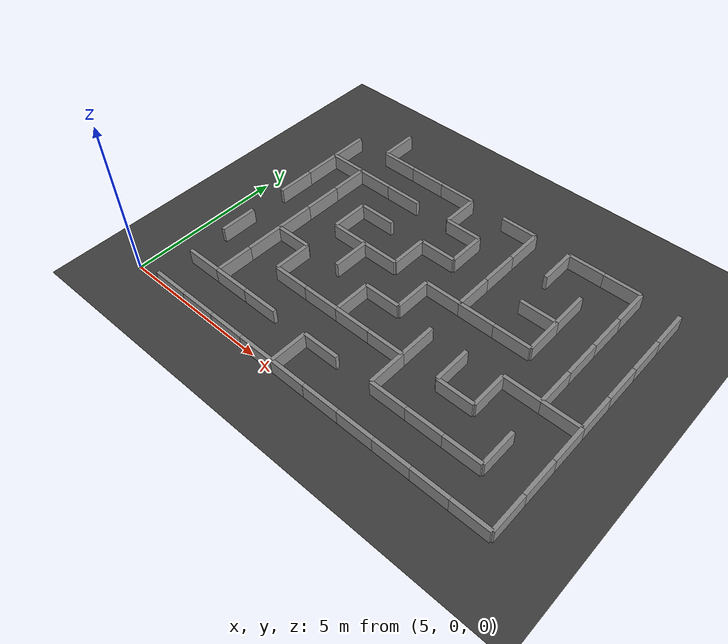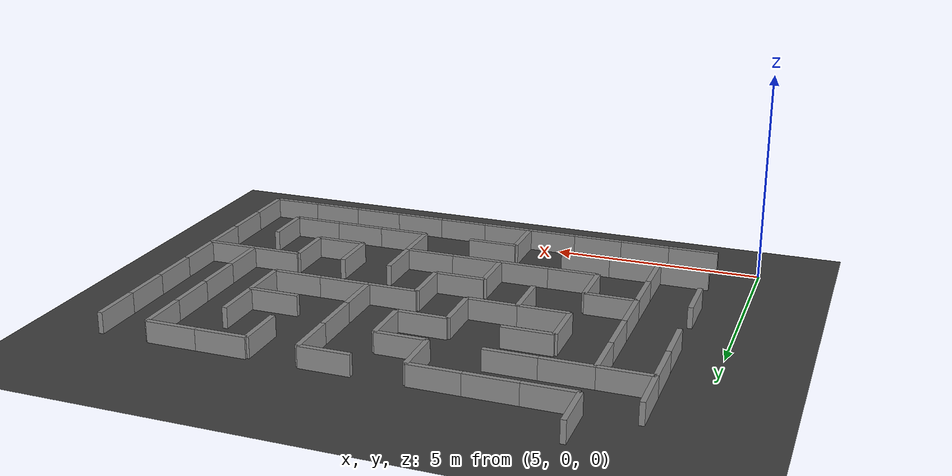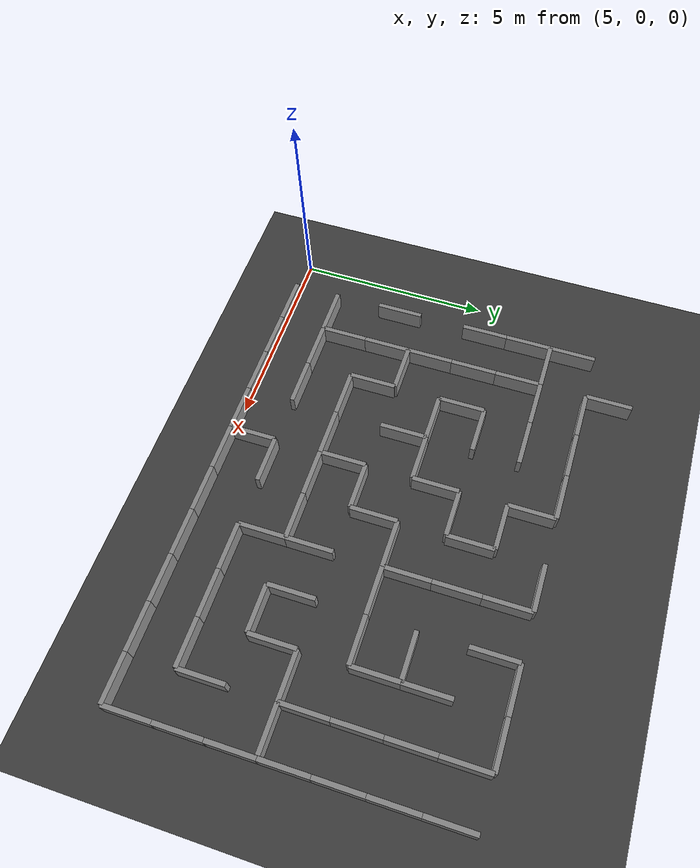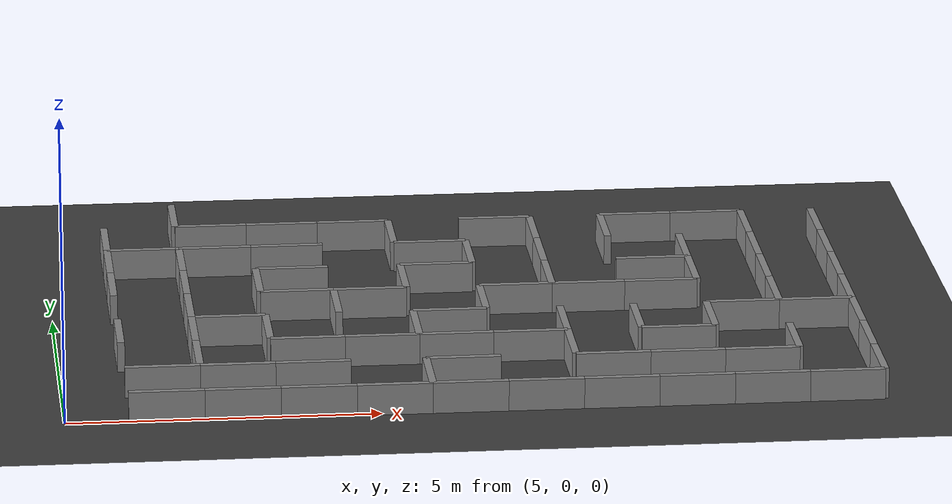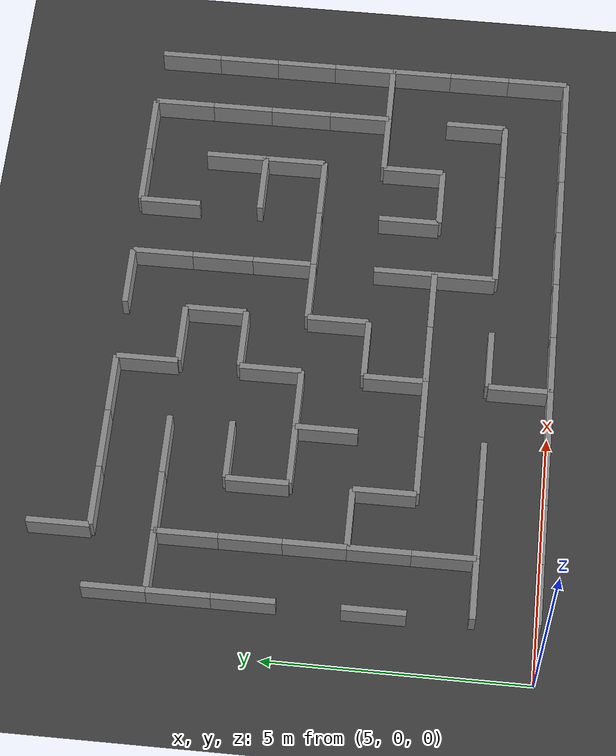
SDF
<sdf version="1.9">
 <world name="maze_world">
  <model name="ground_plane">
   <static>true</static>
   <link name="link">
    <collision name="col">
     <geometry><plane><normal>0 0 1</normal><size>500 500</size></plane></geometry>
     <surface><friction><ode><mu>1.0</mu><mu2>1.0</mu2></ode></friction></surface>
    </collision>
    <visual name="vis">
     <geometry><plane><normal>0 0 1</normal><size>500 500</size></plane></geometry>
     <material><ambient>0.25 0.25 0.25 1</ambient><diffuse>0.25 0.25 0.25 1</diffuse></material>
    </visual>
   </link>
  </model>
  <model name="maze_walls">
   <static>true</static>
   <link name="w0104">
    <pose>7.20000 9.00000 0.25000 0 0 0</pose>
    <collision name="col">
     <geometry><box><size>0.12000 1.20000 0.50000</size></box></geometry>
     <surface><friction><ode><mu>1.0</mu><mu2>1.0</mu2></ode></friction></surface>
    </collision>
    <visual name="vis">
     <geometry><box><size>0.12000 1.20000 0.50000</size></box></geometry>
     <material>
      <ambient>0.55 0.55 0.55 1</ambient>
      <diffuse>0.55 0.55 0.55 1</diffuse>
      <specular>0.1 0.1 0.1 1</specular>
     </material>
    </visual>
   </link>
   <link name="w0105">
    <pose>7.80000 8.40000 0.25000 0 0 0</pose>
    <collision name="col">
     <geometry><box><size>1.20000 0.12000 0.50000</size></box></geometry>
     <surface><friction><ode><mu>1.0</mu><mu2>1.0</mu2></ode></friction></surface>
    </collision>
    <visual name="vis">
     <geometry><box><size>1.20000 0.12000 0.50000</size></box></geometry>
     <material>
      <ambient>0.55 0.55 0.55 1</ambient>
      <diffuse>0.55 0.55 0.55 1</diffuse>
      <specular>0.1 0.1 0.1 1</specular>
     </material>
    </visual>
   </link>
   <link name="w0106">
    <pose>9.00000 8.40000 0.25000 0 0 0</pose>
    <collision name="col">
     <geometry><box><size>1.20000 0.12000 0.50000</size></box></geometry>
     <surface><friction><ode><mu>1.0</mu><mu2>1.0</mu2></ode></friction></surface>
    </collision>
    <visual name="vis">
     <geometry><box><size>1.20000 0.12000 0.50000</size></box></geometry>
     <material>
      <ambient>0.55 0.55 0.55 1</ambient>
      <diffuse>0.55 0.55 0.55 1</diffuse>
      <specular>0.1 0.1 0.1 1</specular>
     </material>
    </visual>
   </link>
   <link name="w0107">
    <pose>10.20000 8.40000 0.25000 0 0 0</pose>
    <collision name="col">
     <geometry><box><size>1.20000 0.12000 0.50000</size></box></geometry>
     <surface><friction><ode><mu>1.0</mu><mu2>1.0</mu2></ode></friction></surface>
    </collision>
    <visual name="vis">
     <geometry><box><size>1.20000 0.12000 0.50000</size></box></geometry>
     <material>
      <ambient>0.55 0.55 0.55 1</ambient>
      <diffuse>0.55 0.55 0.55 1</diffuse>
      <specular>0.1 0.1 0.1 1</specular>
     </material>
    </visual>
   </link>
   <link name="w0109">
    <pose>12.60000 8.40000 0.25000 0 0 0</pose>
    <collision name="col">
     <geometry><box><size>1.20000 0.12000 0.50000</size></box></geometry>
     <surface><friction><ode><mu>1.0</mu><mu2>1.0</mu2></ode></friction></surface>
    </collision>
    <visual name="vis">
     <geometry><box><size>1.20000 0.12000 0.50000</size></box></geometry>
     <material>
      <ambient>0.55 0.55 0.55 1</ambient>
      <diffuse>0.55 0.55 0.55 1</diffuse>
      <specular>0.1 0.1 0.1 1</specular>
     </material>
    </visual>
   </link>
   <link name="w0112">
    <pose>15.00000 8.40000 0.25000 0 0 0</pose>
    <collision name="col">
     <geometry><box><size>1.20000 0.12000 0.50000</size></box></geometry>
     <surface><friction><ode><mu>1.0</mu><mu2>1.0</mu2></ode></friction></surface>
    </collision>
    <visual name="vis">
     <geometry><box><size>1.20000 0.12000 0.50000</size></box></geometry>
     <material>
      <ambient>0.55 0.55 0.55 1</ambient>
      <diffuse>0.55 0.55 0.55 1</diffuse>
      <specular>0.1 0.1 0.1 1</specular>
     </material>
    </visual>
   </link>
   <link name="w0113">
    <pose>16.20000 8.40000 0.25000 0 0 0</pose>
    <collision name="col">
     <geometry><box><size>1.20000 0.12000 0.50000</size></box></geometry>
     <surface><friction><ode><mu>1.0</mu><mu2>1.0</mu2></ode></friction></surface>
    </collision>
    <visual name="vis">
     <geometry><box><size>1.20000 0.12000 0.50000</size></box></geometry>
     <material>
      <ambient>0.55 0.55 0.55 1</ambient>
      <diffuse>0.55 0.55 0.55 1</diffuse>
      <specular>0.1 0.1 0.1 1</specular>
     </material>
    </visual>
   </link>
   <link name="w0121">
    <pose>6.00000 7.80000 0.25000 0 0 0</pose>
    <collision name="col">
     <geometry><box><size>0.12000 1.20000 0.50000</size></box></geometry>
     <surface><friction><ode><mu>1.0</mu><mu2>1.0</mu2></ode></friction></surface>
    </collision>
    <visual name="vis">
     <geometry><box><size>0.12000 1.20000 0.50000</size></box></geometry>
     <material>
      <ambient>0.55 0.55 0.55 1</ambient>
      <diffuse>0.55 0.55 0.55 1</diffuse>
      <specular>0.1 0.1 0.1 1</specular>
     </material>
    </visual>
   </link>
   <link name="w0122">
    <pose>6.60000 7.20000 0.25000 0 0 0</pose>
    <collision name="col">
     <geometry><box><size>1.20000 0.12000 0.50000</size></box></geometry>
     <surface><friction><ode><mu>1.0</mu><mu2>1.0</mu2></ode></friction></surface>
    </collision>
    <visual name="vis">
     <geometry><box><size>1.20000 0.12000 0.50000</size></box></geometry>
     <material>
      <ambient>0.55 0.55 0.55 1</ambient>
      <diffuse>0.55 0.55 0.55 1</diffuse>
      <specular>0.1 0.1 0.1 1</specular>
     </material>
    </visual>
   </link>
   <link name="w0123">
    <pose>7.80000 7.20000 0.25000 0 0 0</pose>
    <collision name="col">
     <geometry><box><size>1.20000 0.12000 0.50000</size></box></geometry>
     <surface><friction><ode><mu>1.0</mu><mu2>1.0</mu2></ode></friction></surface>
    </collision>
    <visual name="vis">
     <geometry><box><size>1.20000 0.12000 0.50000</size></box></geometry>
     <material>
      <ambient>0.55 0.55 0.55 1</ambient>
      <diffuse>0.55 0.55 0.55 1</diffuse>
      <specular>0.1 0.1 0.1 1</specular>
     </material>
    </visual>
   </link>
   <link name="w0124">
    <pose>9.00000 7.20000 0.25000 0 0 0</pose>
    <collision name="col">
     <geometry><box><size>1.20000 0.12000 0.50000</size></box></geometry>
     <surface><friction><ode><mu>1.0</mu><mu2>1.0</mu2></ode></friction></surface>
    </collision>
    <visual name="vis">
     <geometry><box><size>1.20000 0.12000 0.50000</size></box></geometry>
     <material>
      <ambient>0.55 0.55 0.55 1</ambient>
      <diffuse>0.55 0.55 0.55 1</diffuse>
      <specular>0.1 0.1 0.1 1</specular>
     </material>
    </visual>
   </link>
   <link name="w0125">
    <pose>10.80000 7.80000 0.25000 0 0 0</pose>
    <collision name="col">
     <geometry><box><size>0.12000 1.20000 0.50000</size></box></geometry>
     <surface><friction><ode><mu>1.0</mu><mu2>1.0</mu2></ode></friction></surface>
    </collision>
    <visual name="vis">
     <geometry><box><size>0.12000 1.20000 0.50000</size></box></geometry>
     <material>
      <ambient>0.55 0.55 0.55 1</ambient>
      <diffuse>0.55 0.55 0.55 1</diffuse>
      <specular>0.1 0.1 0.1 1</specular>
     </material>
    </visual>
   </link>
   <link name="w0126">
    <pose>11.40000 7.20000 0.25000 0 0 0</pose>
    <collision name="col">
     <geometry><box><size>1.20000 0.12000 0.50000</size></box></geometry>
     <surface><friction><ode><mu>1.0</mu><mu2>1.0</mu2></ode></friction></surface>
    </collision>
    <visual name="vis">
     <geometry><box><size>1.20000 0.12000 0.50000</size></box></geometry>
     <material>
      <ambient>0.55 0.55 0.55 1</ambient>
      <diffuse>0.55 0.55 0.55 1</diffuse>
      <specular>0.1 0.1 0.1 1</specular>
     </material>
    </visual>
   </link>
   <link name="w0127">
    <pose>13.20000 7.80000 0.25000 0 0 0</pose>
    <collision name="col">
     <geometry><box><size>0.12000 1.20000 0.50000</size></box></geometry>
     <surface><friction><ode><mu>1.0</mu><mu2>1.0</mu2></ode></friction></surface>
    </collision>
    <visual name="vis">
     <geometry><box><size>0.12000 1.20000 0.50000</size></box></geometry>
     <material>
      <ambient>0.55 0.55 0.55 1</ambient>
      <diffuse>0.55 0.55 0.55 1</diffuse>
      <specular>0.1 0.1 0.1 1</specular>
     </material>
    </visual>
   </link>
   <link name="w0128">
    <pose>14.40000 7.80000 0.25000 0 0 0</pose>
    <collision name="col">
     <geometry><box><size>0.12000 1.20000 0.50000</size></box></geometry>
     <surface><friction><ode><mu>1.0</mu><mu2>1.0</mu2></ode></friction></surface>
    </collision>
    <visual name="vis">
     <geometry><box><size>0.12000 1.20000 0.50000</size></box></geometry>
     <material>
      <ambient>0.55 0.55 0.55 1</ambient>
      <diffuse>0.55 0.55 0.55 1</diffuse>
      <specular>0.1 0.1 0.1 1</specular>
     </material>
    </visual>
   </link>
   <link name="w0129">
    <pose>16.80000 7.80000 0.25000 0 0 0</pose>
    <collision name="col">
     <geometry><box><size>0.12000 1.20000 0.50000</size></box></geometry>
     <surface><friction><ode><mu>1.0</mu><mu2>1.0</mu2></ode></friction></surface>
    </collision>
    <visual name="vis">
     <geometry><box><size>0.12000 1.20000 0.50000</size></box></geometry>
     <material>
      <ambient>0.55 0.55 0.55 1</ambient>
      <diffuse>0.55 0.55 0.55 1</diffuse>
      <specular>0.1 0.1 0.1 1</specular>
     </material>
    </visual>
   </link>
   <link name="w0130">
    <pose>18.00000 7.80000 0.25000 0 0 0</pose>
    <collision name="col">
     <geometry><box><size>0.12000 1.20000 0.50000</size></box></geometry>
     <surface><friction><ode><mu>1.0</mu><mu2>1.0</mu2></ode></friction></surface>
    </collision>
    <visual name="vis">
     <geometry><box><size>0.12000 1.20000 0.50000</size></box></geometry>
     <material>
      <ambient>0.55 0.55 0.55 1</ambient>
      <diffuse>0.55 0.55 0.55 1</diffuse>
      <specular>0.1 0.1 0.1 1</specular>
     </material>
    </visual>
   </link>
   <link name="w0136">
    <pose>6.00000 6.60000 0.25000 0 0 0</pose>
    <collision name="col">
     <geometry><box><size>0.12000 1.20000 0.50000</size></box></geometry>
     <surface><friction><ode><mu>1.0</mu><mu2>1.0</mu2></ode></friction></surface>
    </collision>
    <visual name="vis">
     <geometry><box><size>0.12000 1.20000 0.50000</size></box></geometry>
     <material>
      <ambient>0.55 0.55 0.55 1</ambient>
      <diffuse>0.55 0.55 0.55 1</diffuse>
      <specular>0.1 0.1 0.1 1</specular>
     </material>
    </visual>
   </link>
   <link name="w0137">
    <pose>7.20000 6.60000 0.25000 0 0 0</pose>
    <collision name="col">
     <geometry><box><size>0.12000 1.20000 0.50000</size></box></geometry>
     <surface><friction><ode><mu>1.0</mu><mu2>1.0</mu2></ode></friction></surface>
    </collision>
    <visual name="vis">
     <geometry><box><size>0.12000 1.20000 0.50000</size></box></geometry>
     <material>
      <ambient>0.55 0.55 0.55 1</ambient>
      <diffuse>0.55 0.55 0.55 1</diffuse>
      <specular>0.1 0.1 0.1 1</specular>
     </material>
    </visual>
   </link>
   <link name="w0138">
    <pose>9.00000 6.00000 0.25000 0 0 0</pose>
    <collision name="col">
     <geometry><box><size>1.20000 0.12000 0.50000</size></box></geometry>
     <surface><friction><ode><mu>1.0</mu><mu2>1.0</mu2></ode></friction></surface>
    </collision>
    <visual name="vis">
     <geometry><box><size>1.20000 0.12000 0.50000</size></box></geometry>
     <material>
      <ambient>0.55 0.55 0.55 1</ambient>
      <diffuse>0.55 0.55 0.55 1</diffuse>
      <specular>0.1 0.1 0.1 1</specular>
     </material>
    </visual>
   </link>
   <link name="w0139">
    <pose>11.40000 6.00000 0.25000 0 0 0</pose>
    <collision name="col">
     <geometry><box><size>1.20000 0.12000 0.50000</size></box></geometry>
     <surface><friction><ode><mu>1.0</mu><mu2>1.0</mu2></ode></friction></surface>
    </collision>
    <visual name="vis">
     <geometry><box><size>1.20000 0.12000 0.50000</size></box></geometry>
     <material>
      <ambient>0.55 0.55 0.55 1</ambient>
      <diffuse>0.55 0.55 0.55 1</diffuse>
      <specular>0.1 0.1 0.1 1</specular>
     </material>
    </visual>
   </link>
   <link name="w0140">
    <pose>12.00000 6.60000 0.25000 0 0 0</pose>
    <collision name="col">
     <geometry><box><size>0.12000 1.20000 0.50000</size></box></geometry>
     <surface><friction><ode><mu>1.0</mu><mu2>1.0</mu2></ode></friction></surface>
    </collision>
    <visual name="vis">
     <geometry><box><size>0.12000 1.20000 0.50000</size></box></geometry>
     <material>
      <ambient>0.55 0.55 0.55 1</ambient>
      <diffuse>0.55 0.55 0.55 1</diffuse>
      <specular>0.1 0.1 0.1 1</specular>
     </material>
    </visual>
   </link>
   <link name="w0141">
    <pose>13.20000 6.60000 0.25000 0 0 0</pose>
    <collision name="col">
     <geometry><box><size>0.12000 1.20000 0.50000</size></box></geometry>
     <surface><friction><ode><mu>1.0</mu><mu2>1.0</mu2></ode></friction></surface>
    </collision>
    <visual name="vis">
     <geometry><box><size>0.12000 1.20000 0.50000</size></box></geometry>
     <material>
      <ambient>0.55 0.55 0.55 1</ambient>
      <diffuse>0.55 0.55 0.55 1</diffuse>
      <specular>0.1 0.1 0.1 1</specular>
     </material>
    </visual>
   </link>
   <link name="w0142">
    <pose>15.00000 6.00000 0.25000 0 0 0</pose>
    <collision name="col">
     <geometry><box><size>1.20000 0.12000 0.50000</size></box></geometry>
     <surface><friction><ode><mu>1.0</mu><mu2>1.0</mu2></ode></friction></surface>
    </collision>
    <visual name="vis">
     <geometry><box><size>1.20000 0.12000 0.50000</size></box></geometry>
     <material>
      <ambient>0.55 0.55 0.55 1</ambient>
      <diffuse>0.55 0.55 0.55 1</diffuse>
      <specular>0.1 0.1 0.1 1</specular>
     </material>
    </visual>
   </link>
   <link name="w0143">
    <pose>15.60000 6.60000 0.25000 0 0 0</pose>
    <collision name="col">
     <geometry><box><size>0.12000 1.20000 0.50000</size></box></geometry>
     <surface><friction><ode><mu>1.0</mu><mu2>1.0</mu2></ode></friction></surface>
    </collision>
    <visual name="vis">
     <geometry><box><size>0.12000 1.20000 0.50000</size></box></geometry>
     <material>
      <ambient>0.55 0.55 0.55 1</ambient>
      <diffuse>0.55 0.55 0.55 1</diffuse>
      <specular>0.1 0.1 0.1 1</specular>
     </material>
    </visual>
   </link>
   <link name="w0144">
    <pose>16.80000 6.60000 0.25000 0 0 0</pose>
    <collision name="col">
     <geometry><box><size>0.12000 1.20000 0.50000</size></box></geometry>
     <surface><friction><ode><mu>1.0</mu><mu2>1.0</mu2></ode></friction></surface>
    </collision>
    <visual name="vis">
     <geometry><box><size>0.12000 1.20000 0.50000</size></box></geometry>
     <material>
      <ambient>0.55 0.55 0.55 1</ambient>
      <diffuse>0.55 0.55 0.55 1</diffuse>
      <specular>0.1 0.1 0.1 1</specular>
     </material>
    </visual>
   </link>
   <link name="w0145">
    <pose>18.00000 6.60000 0.25000 0 0 0</pose>
    <collision name="col">
     <geometry><box><size>0.12000 1.20000 0.50000</size></box></geometry>
     <surface><friction><ode><mu>1.0</mu><mu2>1.0</mu2></ode></friction></surface>
    </collision>
    <visual name="vis">
     <geometry><box><size>0.12000 1.20000 0.50000</size></box></geometry>
     <material>
      <ambient>0.55 0.55 0.55 1</ambient>
      <diffuse>0.55 0.55 0.55 1</diffuse>
      <specular>0.1 0.1 0.1 1</specular>
     </material>
    </visual>
   </link>
   <link name="w0150">
    <pose>6.00000 5.40000 0.25000 0 0 0</pose>
    <collision name="col">
     <geometry><box><size>0.12000 1.20000 0.50000</size></box></geometry>
     <surface><friction><ode><mu>1.0</mu><mu2>1.0</mu2></ode></friction></surface>
    </collision>
    <visual name="vis">
     <geometry><box><size>0.12000 1.20000 0.50000</size></box></geometry>
     <material>
      <ambient>0.55 0.55 0.55 1</ambient>
      <diffuse>0.55 0.55 0.55 1</diffuse>
      <specular>0.1 0.1 0.1 1</specular>
     </material>
    </visual>
   </link>
   <link name="w0151">
    <pose>7.20000 5.40000 0.25000 0 0 0</pose>
    <collision name="col">
     <geometry><box><size>0.12000 1.20000 0.50000</size></box></geometry>
     <surface><friction><ode><mu>1.0</mu><mu2>1.0</mu2></ode></friction></surface>
    </collision>
    <visual name="vis">
     <geometry><box><size>0.12000 1.20000 0.50000</size></box></geometry>
     <material>
      <ambient>0.55 0.55 0.55 1</ambient>
      <diffuse>0.55 0.55 0.55 1</diffuse>
      <specular>0.1 0.1 0.1 1</specular>
     </material>
    </visual>
   </link>
   <link name="w0152">
    <pose>8.40000 5.40000 0.25000 0 0 0</pose>
    <collision name="col">
     <geometry><box><size>0.12000 1.20000 0.50000</size></box></geometry>
     <surface><friction><ode><mu>1.0</mu><mu2>1.0</mu2></ode></friction></surface>
    </collision>
    <visual name="vis">
     <geometry><box><size>0.12000 1.20000 0.50000</size></box></geometry>
     <material>
      <ambient>0.55 0.55 0.55 1</ambient>
      <diffuse>0.55 0.55 0.55 1</diffuse>
      <specular>0.1 0.1 0.1 1</specular>
     </material>
    </visual>
   </link>
   <link name="w0153">
    <pose>9.00000 4.80000 0.25000 0 0 0</pose>
    <collision name="col">
     <geometry><box><size>1.20000 0.12000 0.50000</size></box></geometry>
     <surface><friction><ode><mu>1.0</mu><mu2>1.0</mu2></ode></friction></surface>
    </collision>
    <visual name="vis">
     <geometry><box><size>1.20000 0.12000 0.50000</size></box></geometry>
     <material>
      <ambient>0.55 0.55 0.55 1</ambient>
      <diffuse>0.55 0.55 0.55 1</diffuse>
      <specular>0.1 0.1 0.1 1</specular>
     </material>
    </visual>
   </link>
   <link name="w0154">
    <pose>10.20000 4.80000 0.25000 0 0 0</pose>
    <collision name="col">
     <geometry><box><size>1.20000 0.12000 0.50000</size></box></geometry>
     <surface><friction><ode><mu>1.0</mu><mu2>1.0</mu2></ode></friction></surface>
    </collision>
    <visual name="vis">
     <geometry><box><size>1.20000 0.12000 0.50000</size></box></geometry>
     <material>
      <ambient>0.55 0.55 0.55 1</ambient>
      <diffuse>0.55 0.55 0.55 1</diffuse>
      <specular>0.1 0.1 0.1 1</specular>
     </material>
    </visual>
   </link>
   <link name="w0155">
    <pose>10.80000 5.40000 0.25000 0 0 0</pose>
    <collision name="col">
     <geometry><box><size>0.12000 1.20000 0.50000</size></box></geometry>
     <surface><friction><ode><mu>1.0</mu><mu2>1.0</mu2></ode></friction></surface>
    </collision>
    <visual name="vis">
     <geometry><box><size>0.12000 1.20000 0.50000</size></box></geometry>
     <material>
      <ambient>0.55 0.55 0.55 1</ambient>
      <diffuse>0.55 0.55 0.55 1</diffuse>
      <specular>0.1 0.1 0.1 1</specular>
     </material>
    </visual>
   </link>
   <link name="w0156">
    <pose>12.60000 4.80000 0.25000 0 0 0</pose>
    <collision name="col">
     <geometry><box><size>1.20000 0.12000 0.50000</size></box></geometry>
     <surface><friction><ode><mu>1.0</mu><mu2>1.0</mu2></ode></friction></surface>
    </collision>
    <visual name="vis">
     <geometry><box><size>1.20000 0.12000 0.50000</size></box></geometry>
     <material>
      <ambient>0.55 0.55 0.55 1</ambient>
      <diffuse>0.55 0.55 0.55 1</diffuse>
      <specular>0.1 0.1 0.1 1</specular>
     </material>
    </visual>
   </link>
   <link name="w0157">
    <pose>13.20000 5.40000 0.25000 0 0 0</pose>
    <collision name="col">
     <geometry><box><size>0.12000 1.20000 0.50000</size></box></geometry>
     <surface><friction><ode><mu>1.0</mu><mu2>1.0</mu2></ode></friction></surface>
    </collision>
    <visual name="vis">
     <geometry><box><size>0.12000 1.20000 0.50000</size></box></geometry>
     <material>
      <ambient>0.55 0.55 0.55 1</ambient>
      <diffuse>0.55 0.55 0.55 1</diffuse>
      <specular>0.1 0.1 0.1 1</specular>
     </material>
    </visual>
   </link>
   <link name="w0158">
    <pose>13.80000 4.80000 0.25000 0 0 0</pose>
    <collision name="col">
     <geometry><box><size>1.20000 0.12000 0.50000</size></box></geometry>
     <surface><friction><ode><mu>1.0</mu><mu2>1.0</mu2></ode></friction></surface>
    </collision>
    <visual name="vis">
     <geometry><box><size>1.20000 0.12000 0.50000</size></box></geometry>
     <material>
      <ambient>0.55 0.55 0.55 1</ambient>
      <diffuse>0.55 0.55 0.55 1</diffuse>
      <specular>0.1 0.1 0.1 1</specular>
     </material>
    </visual>
   </link>
   <link name="w0159">
    <pose>15.00000 4.80000 0.25000 0 0 0</pose>
    <collision name="col">
     <geometry><box><size>1.20000 0.12000 0.50000</size></box></geometry>
     <surface><friction><ode><mu>1.0</mu><mu2>1.0</mu2></ode></friction></surface>
    </collision>
    <visual name="vis">
     <geometry><box><size>1.20000 0.12000 0.50000</size></box></geometry>
     <material>
      <ambient>0.55 0.55 0.55 1</ambient>
      <diffuse>0.55 0.55 0.55 1</diffuse>
      <specular>0.1 0.1 0.1 1</specular>
     </material>
    </visual>
   </link>
   <link name="w0160">
    <pose>15.60000 5.40000 0.25000 0 0 0</pose>
    <collision name="col">
     <geometry><box><size>0.12000 1.20000 0.50000</size></box></geometry>
     <surface><friction><ode><mu>1.0</mu><mu2>1.0</mu2></ode></friction></surface>
    </collision>
    <visual name="vis">
     <geometry><box><size>0.12000 1.20000 0.50000</size></box></geometry>
     <material>
      <ambient>0.55 0.55 0.55 1</ambient>
      <diffuse>0.55 0.55 0.55 1</diffuse>
      <specular>0.1 0.1 0.1 1</specular>
     </material>
    </visual>
   </link>
   <link name="w0161">
    <pose>16.80000 5.40000 0.25000 0 0 0</pose>
    <collision name="col">
     <geometry><box><size>0.12000 1.20000 0.50000</size></box></geometry>
     <surface><friction><ode><mu>1.0</mu><mu2>1.0</mu2></ode></friction></surface>
    </collision>
    <visual name="vis">
     <geometry><box><size>0.12000 1.20000 0.50000</size></box></geometry>
     <material>
      <ambient>0.55 0.55 0.55 1</ambient>
      <diffuse>0.55 0.55 0.55 1</diffuse>
      <specular>0.1 0.1 0.1 1</specular>
     </material>
    </visual>
   </link>
   <link name="w0162">
    <pose>18.00000 5.40000 0.25000 0 0 0</pose>
    <collision name="col">
     <geometry><box><size>0.12000 1.20000 0.50000</size></box></geometry>
     <surface><friction><ode><mu>1.0</mu><mu2>1.0</mu2></ode></friction></surface>
    </collision>
    <visual name="vis">
     <geometry><box><size>0.12000 1.20000 0.50000</size></box></geometry>
     <material>
      <ambient>0.55 0.55 0.55 1</ambient>
      <diffuse>0.55 0.55 0.55 1</diffuse>
      <specular>0.1 0.1 0.1 1</specular>
     </material>
    </visual>
   </link>
   <link name="w0167">
    <pose>7.20000 4.20000 0.25000 0 0 0</pose>
    <collision name="col">
     <geometry><box><size>0.12000 1.20000 0.50000</size></box></geometry>
     <surface><friction><ode><mu>1.0</mu><mu2>1.0</mu2></ode></friction></surface>
    </collision>
    <visual name="vis">
     <geometry><box><size>0.12000 1.20000 0.50000</size></box></geometry>
     <material>
      <ambient>0.55 0.55 0.55 1</ambient>
      <diffuse>0.55 0.55 0.55 1</diffuse>
      <specular>0.1 0.1 0.1 1</specular>
     </material>
    </visual>
   </link>
   <link name="w0168">
    <pose>7.80000 3.60000 0.25000 0 0 0</pose>
    <collision name="col">
     <geometry><box><size>1.20000 0.12000 0.50000</size></box></geometry>
     <surface><friction><ode><mu>1.0</mu><mu2>1.0</mu2></ode></friction></surface>
    </collision>
    <visual name="vis">
     <geometry><box><size>1.20000 0.12000 0.50000</size></box></geometry>
     <material>
      <ambient>0.55 0.55 0.55 1</ambient>
      <diffuse>0.55 0.55 0.55 1</diffuse>
      <specular>0.1 0.1 0.1 1</specular>
     </material>
    </visual>
   </link>
   <link name="w0169">
    <pose>9.60000 4.20000 0.25000 0 0 0</pose>
    <collision name="col">
     <geometry><box><size>0.12000 1.20000 0.50000</size></box></geometry>
     <surface><friction><ode><mu>1.0</mu><mu2>1.0</mu2></ode></friction></surface>
    </collision>
    <visual name="vis">
     <geometry><box><size>0.12000 1.20000 0.50000</size></box></geometry>
     <material>
      <ambient>0.55 0.55 0.55 1</ambient>
      <diffuse>0.55 0.55 0.55 1</diffuse>
      <specular>0.1 0.1 0.1 1</specular>
     </material>
    </visual>
   </link>
   <link name="w0170">
    <pose>11.40000 3.60000 0.25000 0 0 0</pose>
    <collision name="col">
     <geometry><box><size>1.20000 0.12000 0.50000</size></box></geometry>
     <surface><friction><ode><mu>1.0</mu><mu2>1.0</mu2></ode></friction></surface>
    </collision>
    <visual name="vis">
     <geometry><box><size>1.20000 0.12000 0.50000</size></box></geometry>
     <material>
      <ambient>0.55 0.55 0.55 1</ambient>
      <diffuse>0.55 0.55 0.55 1</diffuse>
      <specular>0.1 0.1 0.1 1</specular>
     </material>
    </visual>
   </link>
   <link name="w0171">
    <pose>12.00000 4.20000 0.25000 0 0 0</pose>
    <collision name="col">
     <geometry><box><size>0.12000 1.20000 0.50000</size></box></geometry>
     <surface><friction><ode><mu>1.0</mu><mu2>1.0</mu2></ode></friction></surface>
    </collision>
    <visual name="vis">
     <geometry><box><size>0.12000 1.20000 0.50000</size></box></geometry>
     <material>
      <ambient>0.55 0.55 0.55 1</ambient>
      <diffuse>0.55 0.55 0.55 1</diffuse>
      <specular>0.1 0.1 0.1 1</specular>
     </material>
    </visual>
   </link>
   <link name="w0172">
    <pose>16.20000 3.60000 0.25000 0 0 0</pose>
    <collision name="col">
     <geometry><box><size>1.20000 0.12000 0.50000</size></box></geometry>
     <surface><friction><ode><mu>1.0</mu><mu2>1.0</mu2></ode></friction></surface>
    </collision>
    <visual name="vis">
     <geometry><box><size>1.20000 0.12000 0.50000</size></box></geometry>
     <material>
      <ambient>0.55 0.55 0.55 1</ambient>
      <diffuse>0.55 0.55 0.55 1</diffuse>
      <specular>0.1 0.1 0.1 1</specular>
     </material>
    </visual>
   </link>
   <link name="w0173">
    <pose>16.80000 4.20000 0.25000 0 0 0</pose>
    <collision name="col">
     <geometry><box><size>0.12000 1.20000 0.50000</size></box></geometry>
     <surface><friction><ode><mu>1.0</mu><mu2>1.0</mu2></ode></friction></surface>
    </collision>
    <visual name="vis">
     <geometry><box><size>0.12000 1.20000 0.50000</size></box></geometry>
     <material>
      <ambient>0.55 0.55 0.55 1</ambient>
      <diffuse>0.55 0.55 0.55 1</diffuse>
      <specular>0.1 0.1 0.1 1</specular>
     </material>
    </visual>
   </link>
   <link name="w0174">
    <pose>17.40000 3.60000 0.25000 0 0 0</pose>
    <collision name="col">
     <geometry><box><size>1.20000 0.12000 0.50000</size></box></geometry>
     <surface><friction><ode><mu>1.0</mu><mu2>1.0</mu2></ode></friction></surface>
    </collision>
    <visual name="vis">
     <geometry><box><size>1.20000 0.12000 0.50000</size></box></geometry>
     <material>
      <ambient>0.55 0.55 0.55 1</ambient>
      <diffuse>0.55 0.55 0.55 1</diffuse>
      <specular>0.1 0.1 0.1 1</specular>
     </material>
    </visual>
   </link>
   <link name="w0175">
    <pose>18.00000 4.20000 0.25000 0 0 0</pose>
    <collision name="col">
     <geometry><box><size>0.12000 1.20000 0.50000</size></box></geometry>
     <surface><friction><ode><mu>1.0</mu><mu2>1.0</mu2></ode></friction></surface>
    </collision>
    <visual name="vis">
     <geometry><box><size>0.12000 1.20000 0.50000</size></box></geometry>
     <material>
      <ambient>0.55 0.55 0.55 1</ambient>
      <diffuse>0.55 0.55 0.55 1</diffuse>
      <specular>0.1 0.1 0.1 1</specular>
     </material>
    </visual>
   </link>
   <link name="w0180">
    <pose>6.00000 3.00000 0.25000 0 0 0</pose>
    <collision name="col">
     <geometry><box><size>0.12000 1.20000 0.50000</size></box></geometry>
     <surface><friction><ode><mu>1.0</mu><mu2>1.0</mu2></ode></friction></surface>
    </collision>
    <visual name="vis">
     <geometry><box><size>0.12000 1.20000 0.50000</size></box></geometry>
     <material>
      <ambient>0.55 0.55 0.55 1</ambient>
      <diffuse>0.55 0.55 0.55 1</diffuse>
      <specular>0.1 0.1 0.1 1</specular>
     </material>
    </visual>
   </link>
   <link name="w0181">
    <pose>7.20000 3.00000 0.25000 0 0 0</pose>
    <collision name="col">
     <geometry><box><size>0.12000 1.20000 0.50000</size></box></geometry>
     <surface><friction><ode><mu>1.0</mu><mu2>1.0</mu2></ode></friction></surface>
    </collision>
    <visual name="vis">
     <geometry><box><size>0.12000 1.20000 0.50000</size></box></geometry>
     <material>
      <ambient>0.55 0.55 0.55 1</ambient>
      <diffuse>0.55 0.55 0.55 1</diffuse>
      <specular>0.1 0.1 0.1 1</specular>
     </material>
    </visual>
   </link>
   <link name="w0182">
    <pose>8.40000 3.00000 0.25000 0 0 0</pose>
    <collision name="col">
     <geometry><box><size>0.12000 1.20000 0.50000</size></box></geometry>
     <surface><friction><ode><mu>1.0</mu><mu2>1.0</mu2></ode></friction></surface>
    </collision>
    <visual name="vis">
     <geometry><box><size>0.12000 1.20000 0.50000</size></box></geometry>
     <material>
      <ambient>0.55 0.55 0.55 1</ambient>
      <diffuse>0.55 0.55 0.55 1</diffuse>
      <specular>0.1 0.1 0.1 1</specular>
     </material>
    </visual>
   </link>
   <link name="w0183">
    <pose>9.00000 2.40000 0.25000 0 0 0</pose>
    <collision name="col">
     <geometry><box><size>1.20000 0.12000 0.50000</size></box></geometry>
     <surface><friction><ode><mu>1.0</mu><mu2>1.0</mu2></ode></friction></surface>
    </collision>
    <visual name="vis">
     <geometry><box><size>1.20000 0.12000 0.50000</size></box></geometry>
     <material>
      <ambient>0.55 0.55 0.55 1</ambient>
      <diffuse>0.55 0.55 0.55 1</diffuse>
      <specular>0.1 0.1 0.1 1</specular>
     </material>
    </visual>
   </link>
   <link name="w0184">
    <pose>10.20000 2.40000 0.25000 0 0 0</pose>
    <collision name="col">
     <geometry><box><size>1.20000 0.12000 0.50000</size></box></geometry>
     <surface><friction><ode><mu>1.0</mu><mu2>1.0</mu2></ode></friction></surface>
    </collision>
    <visual name="vis">
     <geometry><box><size>1.20000 0.12000 0.50000</size></box></geometry>
     <material>
      <ambient>0.55 0.55 0.55 1</ambient>
      <diffuse>0.55 0.55 0.55 1</diffuse>
      <specular>0.1 0.1 0.1 1</specular>
     </material>
    </visual>
   </link>
   <link name="w0185">
    <pose>10.80000 3.00000 0.25000 0 0 0</pose>
    <collision name="col">
     <geometry><box><size>0.12000 1.20000 0.50000</size></box></geometry>
     <surface><friction><ode><mu>1.0</mu><mu2>1.0</mu2></ode></friction></surface>
    </collision>
    <visual name="vis">
     <geometry><box><size>0.12000 1.20000 0.50000</size></box></geometry>
     <material>
      <ambient>0.55 0.55 0.55 1</ambient>
      <diffuse>0.55 0.55 0.55 1</diffuse>
      <specular>0.1 0.1 0.1 1</specular>
     </material>
    </visual>
   </link>
   <link name="w0186">
    <pose>11.40000 2.40000 0.25000 0 0 0</pose>
    <collision name="col">
     <geometry><box><size>1.20000 0.12000 0.50000</size></box></geometry>
     <surface><friction><ode><mu>1.0</mu><mu2>1.0</mu2></ode></friction></surface>
    </collision>
    <visual name="vis">
     <geometry><box><size>1.20000 0.12000 0.50000</size></box></geometry>
     <material>
      <ambient>0.55 0.55 0.55 1</ambient>
      <diffuse>0.55 0.55 0.55 1</diffuse>
      <specular>0.1 0.1 0.1 1</specular>
     </material>
    </visual>
   </link>
   <link name="w0187">
    <pose>12.60000 2.40000 0.25000 0 0 0</pose>
    <collision name="col">
     <geometry><box><size>1.20000 0.12000 0.50000</size></box></geometry>
     <surface><friction><ode><mu>1.0</mu><mu2>1.0</mu2></ode></friction></surface>
    </collision>
    <visual name="vis">
     <geometry><box><size>1.20000 0.12000 0.50000</size></box></geometry>
     <material>
      <ambient>0.55 0.55 0.55 1</ambient>
      <diffuse>0.55 0.55 0.55 1</diffuse>
      <specular>0.1 0.1 0.1 1</specular>
     </material>
    </visual>
   </link>
   <link name="w0188">
    <pose>13.20000 3.00000 0.25000 0 0 0</pose>
    <collision name="col">
     <geometry><box><size>0.12000 1.20000 0.50000</size></box></geometry>
     <surface><friction><ode><mu>1.0</mu><mu2>1.0</mu2></ode></friction></surface>
    </collision>
    <visual name="vis">
     <geometry><box><size>0.12000 1.20000 0.50000</size></box></geometry>
     <material>
      <ambient>0.55 0.55 0.55 1</ambient>
      <diffuse>0.55 0.55 0.55 1</diffuse>
      <specular>0.1 0.1 0.1 1</specular>
     </material>
    </visual>
   </link>
   <link name="w0189">
    <pose>14.40000 3.00000 0.25000 0 0 0</pose>
    <collision name="col">
     <geometry><box><size>0.12000 1.20000 0.50000</size></box></geometry>
     <surface><friction><ode><mu>1.0</mu><mu2>1.0</mu2></ode></friction></surface>
    </collision>
    <visual name="vis">
     <geometry><box><size>0.12000 1.20000 0.50000</size></box></geometry>
     <material>
      <ambient>0.55 0.55 0.55 1</ambient>
      <diffuse>0.55 0.55 0.55 1</diffuse>
      <specular>0.1 0.1 0.1 1</specular>
     </material>
    </visual>
   </link>
   <link name="w0190">
    <pose>15.00000 2.40000 0.25000 0 0 0</pose>
    <collision name="col">
     <geometry><box><size>1.20000 0.12000 0.50000</size></box></geometry>
     <surface><friction><ode><mu>1.0</mu><mu2>1.0</mu2></ode></friction></surface>
    </collision>
    <visual name="vis">
     <geometry><box><size>1.20000 0.12000 0.50000</size></box></geometry>
     <material>
      <ambient>0.55 0.55 0.55 1</ambient>
      <diffuse>0.55 0.55 0.55 1</diffuse>
      <specular>0.1 0.1 0.1 1</specular>
     </material>
    </visual>
   </link>
   <link name="w0191">
    <pose>15.60000 3.00000 0.25000 0 0 0</pose>
    <collision name="col">
     <geometry><box><size>0.12000 1.20000 0.50000</size></box></geometry>
     <surface><friction><ode><mu>1.0</mu><mu2>1.0</mu2></ode></friction></surface>
    </collision>
    <visual name="vis">
     <geometry><box><size>0.12000 1.20000 0.50000</size></box></geometry>
     <material>
      <ambient>0.55 0.55 0.55 1</ambient>
      <diffuse>0.55 0.55 0.55 1</diffuse>
      <specular>0.1 0.1 0.1 1</specular>
     </material>
    </visual>
   </link>
   <link name="w0192">
    <pose>18.00000 3.00000 0.25000 0 0 0</pose>
    <collision name="col">
     <geometry><box><size>0.12000 1.20000 0.50000</size></box></geometry>
     <surface><friction><ode><mu>1.0</mu><mu2>1.0</mu2></ode></friction></surface>
    </collision>
    <visual name="vis">
     <geometry><box><size>0.12000 1.20000 0.50000</size></box></geometry>
     <material>
      <ambient>0.55 0.55 0.55 1</ambient>
      <diffuse>0.55 0.55 0.55 1</diffuse>
      <specular>0.1 0.1 0.1 1</specular>
     </material>
    </visual>
   </link>
   <link name="w0197">
    <pose>6.60000 1.20000 0.25000 0 0 0</pose>
    <collision name="col">
     <geometry><box><size>1.20000 0.12000 0.50000</size></box></geometry>
     <surface><friction><ode><mu>1.0</mu><mu2>1.0</mu2></ode></friction></surface>
    </collision>
    <visual name="vis">
     <geometry><box><size>1.20000 0.12000 0.50000</size></box></geometry>
     <material>
      <ambient>0.55 0.55 0.55 1</ambient>
      <diffuse>0.55 0.55 0.55 1</diffuse>
      <specular>0.1 0.1 0.1 1</specular>
     </material>
    </visual>
   </link>
   <link name="w0198">
    <pose>7.20000 1.80000 0.25000 0 0 0</pose>
    <collision name="col">
     <geometry><box><size>0.12000 1.20000 0.50000</size></box></geometry>
     <surface><friction><ode><mu>1.0</mu><mu2>1.0</mu2></ode></friction></surface>
    </collision>
    <visual name="vis">
     <geometry><box><size>0.12000 1.20000 0.50000</size></box></geometry>
     <material>
      <ambient>0.55 0.55 0.55 1</ambient>
      <diffuse>0.55 0.55 0.55 1</diffuse>
      <specular>0.1 0.1 0.1 1</specular>
     </material>
    </visual>
   </link>
   <link name="w0199">
    <pose>7.80000 1.20000 0.25000 0 0 0</pose>
    <collision name="col">
     <geometry><box><size>1.20000 0.12000 0.50000</size></box></geometry>
     <surface><friction><ode><mu>1.0</mu><mu2>1.0</mu2></ode></friction></surface>
    </collision>
    <visual name="vis">
     <geometry><box><size>1.20000 0.12000 0.50000</size></box></geometry>
     <material>
      <ambient>0.55 0.55 0.55 1</ambient>
      <diffuse>0.55 0.55 0.55 1</diffuse>
      <specular>0.1 0.1 0.1 1</specular>
     </material>
    </visual>
   </link>
   <link name="w0200">
    <pose>9.00000 1.20000 0.25000 0 0 0</pose>
    <collision name="col">
     <geometry><box><size>1.20000 0.12000 0.50000</size></box></geometry>
     <surface><friction><ode><mu>1.0</mu><mu2>1.0</mu2></ode></friction></surface>
    </collision>
    <visual name="vis">
     <geometry><box><size>1.20000 0.12000 0.50000</size></box></geometry>
     <material>
      <ambient>0.55 0.55 0.55 1</ambient>
      <diffuse>0.55 0.55 0.55 1</diffuse>
      <specular>0.1 0.1 0.1 1</specular>
     </material>
    </visual>
   </link>
   <link name="w0201">
    <pose>11.40000 1.20000 0.25000 0 0 0</pose>
    <collision name="col">
     <geometry><box><size>1.20000 0.12000 0.50000</size></box></geometry>
     <surface><friction><ode><mu>1.0</mu><mu2>1.0</mu2></ode></friction></surface>
    </collision>
    <visual name="vis">
     <geometry><box><size>1.20000 0.12000 0.50000</size></box></geometry>
     <material>
      <ambient>0.55 0.55 0.55 1</ambient>
      <diffuse>0.55 0.55 0.55 1</diffuse>
      <specular>0.1 0.1 0.1 1</specular>
     </material>
    </visual>
   </link>
   <link name="w0202">
    <pose>13.20000 1.80000 0.25000 0 0 0</pose>
    <collision name="col">
     <geometry><box><size>0.12000 1.20000 0.50000</size></box></geometry>
     <surface><friction><ode><mu>1.0</mu><mu2>1.0</mu2></ode></friction></surface>
    </collision>
    <visual name="vis">
     <geometry><box><size>0.12000 1.20000 0.50000</size></box></geometry>
     <material>
      <ambient>0.55 0.55 0.55 1</ambient>
      <diffuse>0.55 0.55 0.55 1</diffuse>
      <specular>0.1 0.1 0.1 1</specular>
     </material>
    </visual>
   </link>
   <link name="w0203">
    <pose>13.80000 1.20000 0.25000 0 0 0</pose>
    <collision name="col">
     <geometry><box><size>1.20000 0.12000 0.50000</size></box></geometry>
     <surface><friction><ode><mu>1.0</mu><mu2>1.0</mu2></ode></friction></surface>
    </collision>
    <visual name="vis">
     <geometry><box><size>1.20000 0.12000 0.50000</size></box></geometry>
     <material>
      <ambient>0.55 0.55 0.55 1</ambient>
      <diffuse>0.55 0.55 0.55 1</diffuse>
      <specular>0.1 0.1 0.1 1</specular>
     </material>
    </visual>
   </link>
   <link name="w0204">
    <pose>15.00000 1.20000 0.25000 0 0 0</pose>
    <collision name="col">
     <geometry><box><size>1.20000 0.12000 0.50000</size></box></geometry>
     <surface><friction><ode><mu>1.0</mu><mu2>1.0</mu2></ode></friction></surface>
    </collision>
    <visual name="vis">
     <geometry><box><size>1.20000 0.12000 0.50000</size></box></geometry>
     <material>
      <ambient>0.55 0.55 0.55 1</ambient>
      <diffuse>0.55 0.55 0.55 1</diffuse>
      <specular>0.1 0.1 0.1 1</specular>
     </material>
    </visual>
   </link>
   <link name="w0205">
    <pose>16.20000 1.20000 0.25000 0 0 0</pose>
    <collision name="col">
     <geometry><box><size>1.20000 0.12000 0.50000</size></box></geometry>
     <surface><friction><ode><mu>1.0</mu><mu2>1.0</mu2></ode></friction></surface>
    </collision>
    <visual name="vis">
     <geometry><box><size>1.20000 0.12000 0.50000</size></box></geometry>
     <material>
      <ambient>0.55 0.55 0.55 1</ambient>
      <diffuse>0.55 0.55 0.55 1</diffuse>
      <specular>0.1 0.1 0.1 1</specular>
     </material>
    </visual>
   </link>
   <link name="w0206">
    <pose>16.80000 1.80000 0.25000 0 0 0</pose>
    <collision name="col">
     <geometry><box><size>0.12000 1.20000 0.50000</size></box></geometry>
     <surface><friction><ode><mu>1.0</mu><mu2>1.0</mu2></ode></friction></surface>
    </collision>
    <visual name="vis">
     <geometry><box><size>0.12000 1.20000 0.50000</size></box></geometry>
     <material>
      <ambient>0.55 0.55 0.55 1</ambient>
      <diffuse>0.55 0.55 0.55 1</diffuse>
      <specular>0.1 0.1 0.1 1</specular>
     </material>
    </visual>
   </link>
   <link name="w0207">
    <pose>18.00000 1.80000 0.25000 0 0 0</pose>
    <collision name="col">
     <geometry><box><size>0.12000 1.20000 0.50000</size></box></geometry>
     <surface><friction><ode><mu>1.0</mu><mu2>1.0</mu2></ode></friction></surface>
    </collision>
    <visual name="vis">
     <geometry><box><size>0.12000 1.20000 0.50000</size></box></geometry>
     <material>
      <ambient>0.55 0.55 0.55 1</ambient>
      <diffuse>0.55 0.55 0.55 1</diffuse>
      <specular>0.1 0.1 0.1 1</specular>
     </material>
    </visual>
   </link>
   <link name="w0213">
    <pose>6.60000 0.00000 0.25000 0 0 0</pose>
    <collision name="col">
     <geometry><box><size>1.20000 0.12000 0.50000</size></box></geometry>
     <surface><friction><ode><mu>1.0</mu><mu2>1.0</mu2></ode></friction></surface>
    </collision>
    <visual name="vis">
     <geometry><box><size>1.20000 0.12000 0.50000</size></box></geometry>
     <material>
      <ambient>0.55 0.55 0.55 1</ambient>
      <diffuse>0.55 0.55 0.55 1</diffuse>
      <specular>0.1 0.1 0.1 1</specular>
     </material>
    </visual>
   </link>
   <link name="w0214">
    <pose>7.80000 0.00000 0.25000 0 0 0</pose>
    <collision name="col">
     <geometry><box><size>1.20000 0.12000 0.50000</size></box></geometry>
     <surface><friction><ode><mu>1.0</mu><mu2>1.0</mu2></ode></friction></surface>
    </collision>
    <visual name="vis">
     <geometry><box><size>1.20000 0.12000 0.50000</size></box></geometry>
     <material>
      <ambient>0.55 0.55 0.55 1</ambient>
      <diffuse>0.55 0.55 0.55 1</diffuse>
      <specular>0.1 0.1 0.1 1</specular>
     </material>
    </visual>
   </link>
   <link name="w0215">
    <pose>9.00000 0.00000 0.25000 0 0 0</pose>
    <collision name="col">
     <geometry><box><size>1.20000 0.12000 0.50000</size></box></geometry>
     <surface><friction><ode><mu>1.0</mu><mu2>1.0</mu2></ode></friction></surface>
    </collision>
    <visual name="vis">
     <geometry><box><size>1.20000 0.12000 0.50000</size></box></geometry>
     <material>
      <ambient>0.55 0.55 0.55 1</ambient>
      <diffuse>0.55 0.55 0.55 1</diffuse>
      <specular>0.1 0.1 0.1 1</specular>
     </material>
    </visual>
   </link>
   <link name="w0216">
    <pose>10.20000 0.00000 0.25000 0 0 0</pose>
    <collision name="col">
     <geometry><box><size>1.20000 0.12000 0.50000</size></box></geometry>
     <surface><friction><ode><mu>1.0</mu><mu2>1.0</mu2></ode></friction></surface>
    </collision>
    <visual name="vis">
     <geometry><box><size>1.20000 0.12000 0.50000</size></box></geometry>
     <material>
      <ambient>0.55 0.55 0.55 1</ambient>
      <diffuse>0.55 0.55 0.55 1</diffuse>
      <specular>0.1 0.1 0.1 1</specular>
     </material>
    </visual>
   </link>
   <link name="w0217">
    <pose>10.80000 0.60000 0.25000 0 0 0</pose>
    <collision name="col">
     <geometry><box><size>0.12000 1.20000 0.50000</size></box></geometry>
     <surface><friction><ode><mu>1.0</mu><mu2>1.0</mu2></ode></friction></surface>
    </collision>
    <visual name="vis">
     <geometry><box><size>0.12000 1.20000 0.50000</size></box></geometry>
     <material>
      <ambient>0.55 0.55 0.55 1</ambient>
      <diffuse>0.55 0.55 0.55 1</diffuse>
      <specular>0.1 0.1 0.1 1</specular>
     </material>
    </visual>
   </link>
   <link name="w0218">
    <pose>11.40000 0.00000 0.25000 0 0 0</pose>
    <collision name="col">
     <geometry><box><size>1.20000 0.12000 0.50000</size></box></geometry>
     <surface><friction><ode><mu>1.0</mu><mu2>1.0</mu2></ode></friction></surface>
    </collision>
    <visual name="vis">
     <geometry><box><size>1.20000 0.12000 0.50000</size></box></geometry>
     <material>
      <ambient>0.55 0.55 0.55 1</ambient>
      <diffuse>0.55 0.55 0.55 1</diffuse>
      <specular>0.1 0.1 0.1 1</specular>
     </material>
    </visual>
   </link>
   <link name="w0219">
    <pose>12.60000 0.00000 0.25000 0 0 0</pose>
    <collision name="col">
     <geometry><box><size>1.20000 0.12000 0.50000</size></box></geometry>
     <surface><friction><ode><mu>1.0</mu><mu2>1.0</mu2></ode></friction></surface>
    </collision>
    <visual name="vis">
     <geometry><box><size>1.20000 0.12000 0.50000</size></box></geometry>
     <material>
      <ambient>0.55 0.55 0.55 1</ambient>
      <diffuse>0.55 0.55 0.55 1</diffuse>
      <specular>0.1 0.1 0.1 1</specular>
     </material>
    </visual>
   </link>
   <link name="w0220">
    <pose>13.80000 0.00000 0.25000 0 0 0</pose>
    <collision name="col">
     <geometry><box><size>1.20000 0.12000 0.50000</size></box></geometry>
     <surface><friction><ode><mu>1.0</mu><mu2>1.0</mu2></ode></friction></surface>
    </collision>
    <visual name="vis">
     <geometry><box><size>1.20000 0.12000 0.50000</size></box></geometry>
     <material>
      <ambient>0.55 0.55 0.55 1</ambient>
      <diffuse>0.55 0.55 0.55 1</diffuse>
      <specular>0.1 0.1 0.1 1</specular>
     </material>
    </visual>
   </link>
   <link name="w0221">
    <pose>15.00000 0.00000 0.25000 0 0 0</pose>
    <collision name="col">
     <geometry><box><size>1.20000 0.12000 0.50000</size></box></geometry>
     <surface><friction><ode><mu>1.0</mu><mu2>1.0</mu2></ode></friction></surface>
    </collision>
    <visual name="vis">
     <geometry><box><size>1.20000 0.12000 0.50000</size></box></geometry>
     <material>
      <ambient>0.55 0.55 0.55 1</ambient>
      <diffuse>0.55 0.55 0.55 1</diffuse>
      <specular>0.1 0.1 0.1 1</specular>
     </material>
    </visual>
   </link>
   <link name="w0222">
    <pose>16.20000 0.00000 0.25000 0 0 0</pose>
    <collision name="col">
     <geometry><box><size>1.20000 0.12000 0.50000</size></box></geometry>
     <surface><friction><ode><mu>1.0</mu><mu2>1.0</mu2></ode></friction></surface>
    </collision>
    <visual name="vis">
     <geometry><box><size>1.20000 0.12000 0.50000</size></box></geometry>
     <material>
      <ambient>0.55 0.55 0.55 1</ambient>
      <diffuse>0.55 0.55 0.55 1</diffuse>
      <specular>0.1 0.1 0.1 1</specular>
     </material>
    </visual>
   </link>
   <link name="w0223">
    <pose>17.40000 0.00000 0.25000 0 0 0</pose>
    <collision name="col">
     <geometry><box><size>1.20000 0.12000 0.50000</size></box></geometry>
     <surface><friction><ode><mu>1.0</mu><mu2>1.0</mu2></ode></friction></surface>
    </collision>
    <visual name="vis">
     <geometry><box><size>1.20000 0.12000 0.50000</size></box></geometry>
     <material>
      <ambient>0.55 0.55 0.55 1</ambient>
      <diffuse>0.55 0.55 0.55 1</diffuse>
      <specular>0.1 0.1 0.1 1</specular>
     </material>
    </visual>
   </link>
   <link name="w0224">
    <pose>18.00000 0.60000 0.25000 0 0 0</pose>
    <collision name="col">
     <geometry><box><size>0.12000 1.20000 0.50000</size></box></geometry>
     <surface><friction><ode><mu>1.0</mu><mu2>1.0</mu2></ode></friction></surface>
    </collision>
    <visual name="vis">
     <geometry><box><size>0.12000 1.20000 0.50000</size></box></geometry>
     <material>
      <ambient>0.55 0.55 0.55 1</ambient>
      <diffuse>0.55 0.55 0.55 1</diffuse>
      <specular>0.1 0.1 0.1 1</specular>
     </material>
    </visual>
   </link>
  </model>
 </world>
</sdf>
